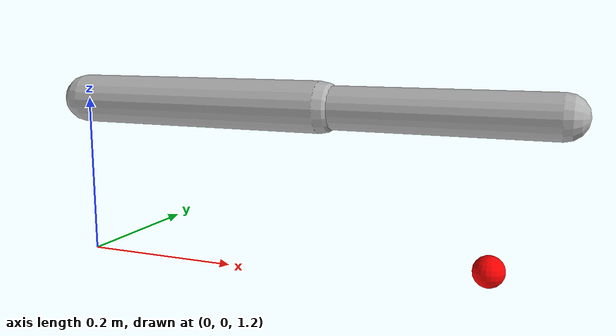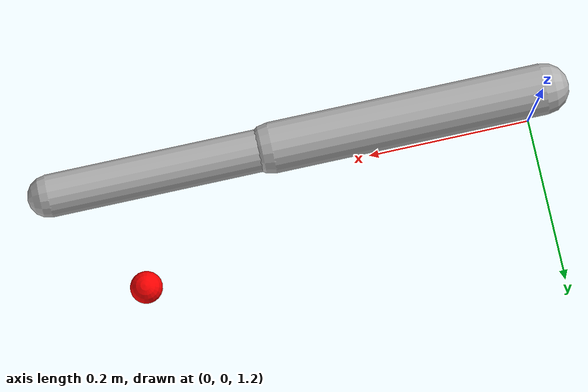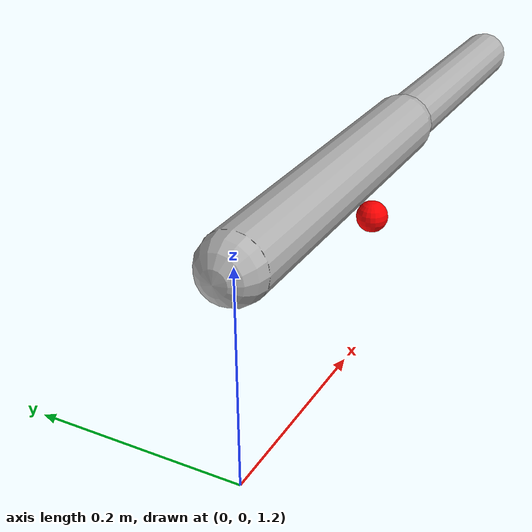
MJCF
<?xml version="1.0" encoding="utf-8"?>
<mujoco model="two_link_arm">
  <compiler angle="degree" coordinate="local"/>
  <option timestep="0.001" gravity="0 0 -9.81" integrator="implicitfast"/>
  <default>
    <joint damping="0.12" limited="true"/>
    <geom type="capsule" rgba="0.7 0.7 0.7 1" density="1200" friction="0.8 0.1 0.1"/>
  </default>

  <worldbody>
    <body name="shoulder" pos="0 0 1.4">
      <joint name="shoulder_pitch" type="hinge" axis="0 1 0" range="-120 120"/>
      <geom name="upperarm" fromto="0 0 0 0.32 0 0" size="0.03" density="1050"/>
      <body name="elbow" pos="0.32 0 0">
        <joint name="elbow_pitch" type="hinge" axis="0 1 0" range="0 150"/>
        <geom name="forearm" fromto="0 0 0 0.26 0 0" size="0.025" density="1050"/>
        <site name="hand" pos="0.26 0 0" size="0.02" rgba="0.2 0.2 1 1"/>
      </body>
    </body>
    <site name="target" pos="0.50 0.10 1.20" size="0.02" rgba="1 0 0 1"/>
  </worldbody>

  <actuator>
    <motor name="m_shoulder" joint="shoulder_pitch" ctrllimited="true" ctrlrange="-60 60" gear="1"/>
    <motor name="m_elbow" joint="elbow_pitch" ctrllimited="true" ctrlrange="-60 60" gear="1"/>
  </actuator>
</mujoco>
